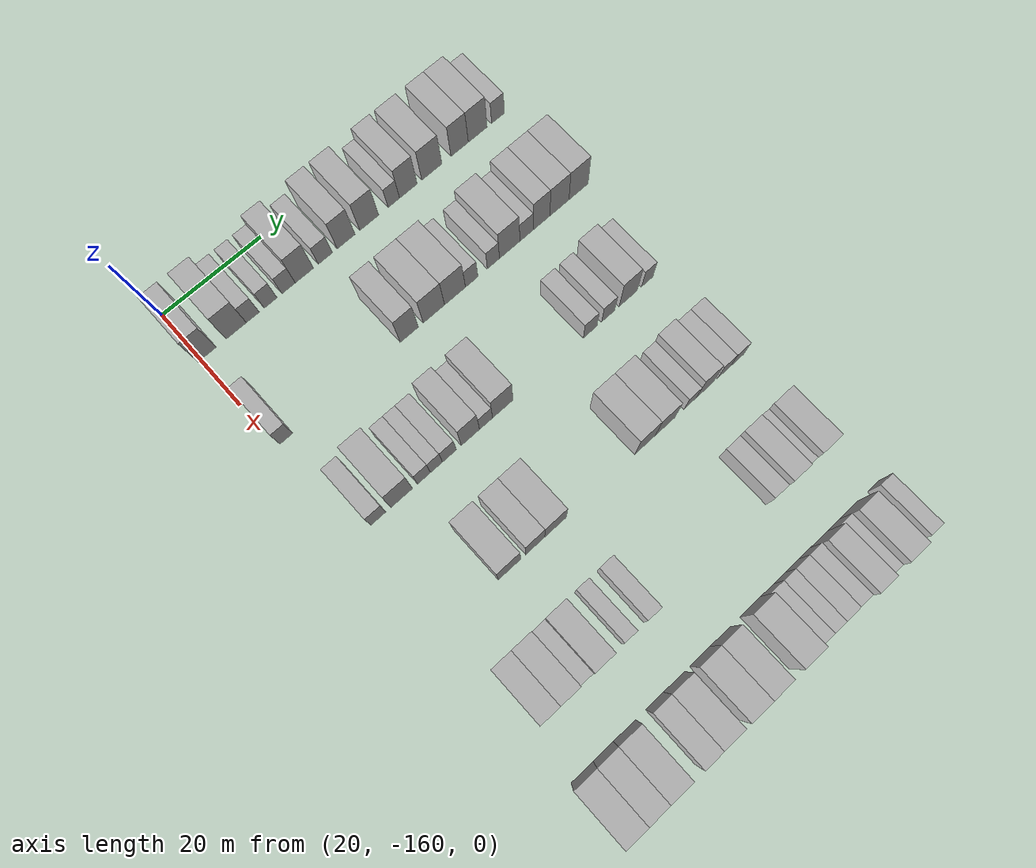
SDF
<sdf version="1.6">
 <world name="default">
  <model name="building_47">
   <static>1</static>
   <pose>25.0000 -158.7105 0 0.000000 0.000000 0.000000</pose>
   <link name="link">
    <pose>0 0 4.50 0 0 0</pose>
    <collision name="collision"><geometry><box><size>10.0000 3.6014 9.0000</size></box></geometry></collision>
    <visual name="visual">
     <cast_shadows>0</cast_shadows>
     <geometry><box><size>10.0000 3.6014 9.0000</size></box></geometry>
     <material>
      <script>
       <uri>model://HANNAS_wall/materials/scripts</uri>
       <uri>model://HANNAS_wall/materials/textures</uri>
       <name>vrc/HANNAS_wall</name>
      </script>
     </material>
    </visual>
   </link>
  </model>
  <model name="building_48">
   <static>1</static>
   <pose>25.0000 -152.8918 0 0.000000 0.000000 0.000000</pose>
   <link name="link">
    <pose>0 0 4.50 0 0 0</pose>
    <collision name="collision"><geometry><box><size>10.0000 4.0360 9.0000</size></box></geometry></collision>
    <visual name="visual">
     <cast_shadows>0</cast_shadows>
     <geometry><box><size>10.0000 4.0360 9.0000</size></box></geometry>
     <material>
      <script>
       <uri>model://HANNAS_wall/materials/scripts</uri>
       <uri>model://HANNAS_wall/materials/textures</uri>
       <name>vrc/HANNAS_wall</name>
      </script>
     </material>
    </visual>
   </link>
  </model>
  <model name="building_49">
   <static>1</static>
   <pose>25.0000 -149.5573 0 0.000000 0.000000 0.000000</pose>
   <link name="link">
    <pose>0 0 3.00 0 0 0</pose>
    <collision name="collision"><geometry><box><size>10.0000 2.6331 6.0000</size></box></geometry></collision>
    <visual name="visual">
     <cast_shadows>0</cast_shadows>
     <geometry><box><size>10.0000 2.6331 6.0000</size></box></geometry>
     <material>
      <script>
       <uri>model://HANNAS_wall/materials/scripts</uri>
       <uri>model://HANNAS_wall/materials/textures</uri>
       <name>vrc/HANNAS_wall</name>
      </script>
     </material>
    </visual>
   </link>
  </model>
  <model name="building_50">
   <static>1</static>
   <pose>25.0000 -145.9354 0 0.000000 0.000000 0.000000</pose>
   <link name="link">
    <pose>0 0 3.00 0 0 0</pose>
    <collision name="collision"><geometry><box><size>10.0000 2.6107 6.0000</size></box></geometry></collision>
    <visual name="visual">
     <cast_shadows>0</cast_shadows>
     <geometry><box><size>10.0000 2.6107 6.0000</size></box></geometry>
     <material>
      <script>
       <uri>model://HANNAS_wall/materials/scripts</uri>
       <uri>model://HANNAS_wall/materials/textures</uri>
       <name>vrc/HANNAS_wall</name>
      </script>
     </material>
    </visual>
   </link>
  </model>
  <model name="building_51">
   <static>1</static>
   <pose>25.0000 -142.2636 0 0.000000 0.000000 0.000000</pose>
   <link name="link">
    <pose>0 0 3.00 0 0 0</pose>
    <collision name="collision"><geometry><box><size>10.0000 2.7328 6.0000</size></box></geometry></collision>
    <visual name="visual">
     <cast_shadows>0</cast_shadows>
     <geometry><box><size>10.0000 2.7328 6.0000</size></box></geometry>
     <material>
      <script>
       <uri>model://HANNAS_wall/materials/scripts</uri>
       <uri>model://HANNAS_wall/materials/textures</uri>
       <name>vrc/HANNAS_wall</name>
      </script>
     </material>
    </visual>
   </link>
  </model>
  <model name="building_52">
   <static>1</static>
   <pose>25.0000 -139.0111 0 0.000000 0.000000 0.000000</pose>
   <link name="link">
    <pose>0 0 4.50 0 0 0</pose>
    <collision name="collision"><geometry><box><size>10.0000 3.7722 9.0000</size></box></geometry></collision>
    <visual name="visual">
     <cast_shadows>0</cast_shadows>
     <geometry><box><size>10.0000 3.7722 9.0000</size></box></geometry>
     <material>
      <script>
       <uri>model://HANNAS_wall/materials/scripts</uri>
       <uri>model://HANNAS_wall/materials/textures</uri>
       <name>vrc/HANNAS_wall</name>
      </script>
     </material>
    </visual>
   </link>
  </model>
  <model name="building_53">
   <static>1</static>
   <pose>25.0000 -134.6420 0 0.000000 0.000000 0.000000</pose>
   <link name="link">
    <pose>0 0 3.00 0 0 0</pose>
    <collision name="collision"><geometry><box><size>10.0000 2.9661 6.0000</size></box></geometry></collision>
    <visual name="visual">
     <cast_shadows>0</cast_shadows>
     <geometry><box><size>10.0000 2.9661 6.0000</size></box></geometry>
     <material>
      <script>
       <uri>model://HANNAS_wall/materials/scripts</uri>
       <uri>model://HANNAS_wall/materials/textures</uri>
       <name>vrc/HANNAS_wall</name>
      </script>
     </material>
    </visual>
   </link>
  </model>
  <model name="building_54">
   <static>1</static>
   <pose>25.0000 -130.2892 0 0.000000 0.000000 0.000000</pose>
   <link name="link">
    <pose>0 0 4.50 0 0 0</pose>
    <collision name="collision"><geometry><box><size>10.0000 3.7396 9.0000</size></box></geometry></collision>
    <visual name="visual">
     <cast_shadows>0</cast_shadows>
     <geometry><box><size>10.0000 3.7396 9.0000</size></box></geometry>
     <material>
      <script>
       <uri>model://HANNAS_wall/materials/scripts</uri>
       <uri>model://HANNAS_wall/materials/textures</uri>
       <name>vrc/HANNAS_wall</name>
      </script>
     </material>
    </visual>
   </link>
  </model>
  <model name="building_55">
   <static>1</static>
   <pose>25.0000 -125.3998 0 0.000000 0.000000 0.000000</pose>
   <link name="link">
    <pose>0 0 4.50 0 0 0</pose>
    <collision name="collision"><geometry><box><size>10.0000 4.0391 9.0000</size></box></geometry></collision>
    <visual name="visual">
     <cast_shadows>0</cast_shadows>
     <geometry><box><size>10.0000 4.0391 9.0000</size></box></geometry>
     <material>
      <script>
       <uri>model://HANNAS_wall/materials/scripts</uri>
       <uri>model://HANNAS_wall/materials/textures</uri>
       <name>vrc/HANNAS_wall</name>
      </script>
     </material>
    </visual>
   </link>
  </model>
  <model name="building_56">
   <static>1</static>
   <pose>25.0000 -120.1382 0 0.000000 0.000000 0.000000</pose>
   <link name="link">
    <pose>0 0 3.00 0 0 0</pose>
    <collision name="collision"><geometry><box><size>10.0000 2.4840 6.0000</size></box></geometry></collision>
    <visual name="visual">
     <cast_shadows>0</cast_shadows>
     <geometry><box><size>10.0000 2.4840 6.0000</size></box></geometry>
     <material>
      <script>
       <uri>model://HANNAS_wall/materials/scripts</uri>
       <uri>model://HANNAS_wall/materials/textures</uri>
       <name>vrc/HANNAS_wall</name>
      </script>
     </material>
    </visual>
   </link>
  </model>
  <model name="building_57">
   <static>1</static>
   <pose>25.0000 -116.9974 0 0.000000 0.000000 0.000000</pose>
   <link name="link">
    <pose>0 0 4.50 0 0 0</pose>
    <collision name="collision"><geometry><box><size>10.0000 3.7977 9.0000</size></box></geometry></collision>
    <visual name="visual">
     <cast_shadows>0</cast_shadows>
     <geometry><box><size>10.0000 3.7977 9.0000</size></box></geometry>
     <material>
      <script>
       <uri>model://HANNAS_wall/materials/scripts</uri>
       <uri>model://HANNAS_wall/materials/textures</uri>
       <name>vrc/HANNAS_wall</name>
      </script>
     </material>
    </visual>
   </link>
  </model>
  <model name="building_58">
   <static>1</static>
   <pose>25.0000 -111.8915 0 0.000000 0.000000 0.000000</pose>
   <link name="link">
    <pose>0 0 4.50 0 0 0</pose>
    <collision name="collision"><geometry><box><size>10.0000 4.4141 9.0000</size></box></geometry></collision>
    <visual name="visual">
     <cast_shadows>0</cast_shadows>
     <geometry><box><size>10.0000 4.4141 9.0000</size></box></geometry>
     <material>
      <script>
       <uri>model://HANNAS_wall/materials/scripts</uri>
       <uri>model://HANNAS_wall/materials/textures</uri>
       <name>vrc/HANNAS_wall</name>
      </script>
     </material>
    </visual>
   </link>
  </model>
  <model name="building_59">
   <static>1</static>
   <pose>25.0000 -105.7636 0 0.000000 0.000000 0.000000</pose>
   <link name="link">
    <pose>0 0 4.50 0 0 0</pose>
    <collision name="collision"><geometry><box><size>10.0000 3.8415 9.0000</size></box></geometry></collision>
    <visual name="visual">
     <cast_shadows>0</cast_shadows>
     <geometry><box><size>10.0000 3.8415 9.0000</size></box></geometry>
     <material>
      <script>
       <uri>model://HANNAS_wall/materials/scripts</uri>
       <uri>model://HANNAS_wall/materials/textures</uri>
       <name>vrc/HANNAS_wall</name>
      </script>
     </material>
    </visual>
   </link>
  </model>
  <model name="building_60">
   <static>1</static>
   <pose>25.0000 -101.7436 0 0.000000 0.000000 0.000000</pose>
   <link name="link">
    <pose>0 0 4.50 0 0 0</pose>
    <collision name="collision"><geometry><box><size>10.0000 4.1987 9.0000</size></box></geometry></collision>
    <visual name="visual">
     <cast_shadows>0</cast_shadows>
     <geometry><box><size>10.0000 4.1987 9.0000</size></box></geometry>
     <material>
      <script>
       <uri>model://HANNAS_wall/materials/scripts</uri>
       <uri>model://HANNAS_wall/materials/textures</uri>
       <name>vrc/HANNAS_wall</name>
      </script>
     </material>
    </visual>
   </link>
  </model>
  <model name="building_61">
   <static>1</static>
   <pose>25.0000 -97.2001 0 0.000000 0.000000 0.000000</pose>
   <link name="link">
    <pose>0 0 3.00 0 0 0</pose>
    <collision name="collision"><geometry><box><size>10.0000 2.8882 6.0000</size></box></geometry></collision>
    <visual name="visual">
     <cast_shadows>0</cast_shadows>
     <geometry><box><size>10.0000 2.8882 6.0000</size></box></geometry>
     <material>
      <script>
       <uri>model://HANNAS_wall/materials/scripts</uri>
       <uri>model://HANNAS_wall/materials/textures</uri>
       <name>vrc/HANNAS_wall</name>
      </script>
     </material>
    </visual>
   </link>
  </model>
  <model name="building_219">
   <static>1</static>
   <pose>44.0000 -158.0676 0 0.000000 0.000000 0.000000</pose>
   <link name="link">
    <pose>0 0 3.00 0 0 0</pose>
    <collision name="collision"><geometry><box><size>10.0000 2.5374 6.0000</size></box></geometry></collision>
    <visual name="visual">
     <cast_shadows>0</cast_shadows>
     <geometry><box><size>10.0000 2.5374 6.0000</size></box></geometry>
     <material>
      <script>
       <uri>model://HANNAS_wall/materials/scripts</uri>
       <uri>model://HANNAS_wall/materials/textures</uri>
       <name>vrc/HANNAS_wall</name>
      </script>
     </material>
    </visual>
   </link>
  </model>
  <model name="building_220">
   <static>1</static>
   <pose>44.0000 -133.1350 0 0.000000 0.000000 0.000000</pose>
   <link name="link">
    <pose>0 0 4.50 0 0 0</pose>
    <collision name="collision"><geometry><box><size>10.0000 3.7759 9.0000</size></box></geometry></collision>
    <visual name="visual">
     <cast_shadows>0</cast_shadows>
     <geometry><box><size>10.0000 3.7759 9.0000</size></box></geometry>
     <material>
      <script>
       <uri>model://HANNAS_wall/materials/scripts</uri>
       <uri>model://HANNAS_wall/materials/textures</uri>
       <name>vrc/HANNAS_wall</name>
      </script>
     </material>
    </visual>
   </link>
  </model>
  <model name="building_221">
   <static>1</static>
   <pose>44.0000 -127.9988 0 0.000000 0.000000 0.000000</pose>
   <link name="link">
    <pose>0 0 4.50 0 0 0</pose>
    <collision name="collision"><geometry><box><size>10.0000 4.4965 9.0000</size></box></geometry></collision>
    <visual name="visual">
     <cast_shadows>0</cast_shadows>
     <geometry><box><size>10.0000 4.4965 9.0000</size></box></geometry>
     <material>
      <script>
       <uri>model://HANNAS_wall/materials/scripts</uri>
       <uri>model://HANNAS_wall/materials/textures</uri>
       <name>vrc/HANNAS_wall</name>
      </script>
     </material>
    </visual>
   </link>
  </model>
  <model name="building_222">
   <static>1</static>
   <pose>44.0000 -123.5186 0 0.000000 0.000000 0.000000</pose>
   <link name="link">
    <pose>0 0 4.50 0 0 0</pose>
    <collision name="collision"><geometry><box><size>10.0000 4.4639 9.0000</size></box></geometry></collision>
    <visual name="visual">
     <cast_shadows>0</cast_shadows>
     <geometry><box><size>10.0000 4.4639 9.0000</size></box></geometry>
     <material>
      <script>
       <uri>model://HANNAS_wall/materials/scripts</uri>
       <uri>model://HANNAS_wall/materials/textures</uri>
       <name>vrc/HANNAS_wall</name>
      </script>
     </material>
    </visual>
   </link>
  </model>
  <model name="building_223">
   <static>1</static>
   <pose>44.0000 -119.9459 0 0.000000 0.000000 0.000000</pose>
   <link name="link">
    <pose>0 0 3.00 0 0 0</pose>
    <collision name="collision"><geometry><box><size>10.0000 2.6814 6.0000</size></box></geometry></collision>
    <visual name="visual">
     <cast_shadows>0</cast_shadows>
     <geometry><box><size>10.0000 2.6814 6.0000</size></box></geometry>
     <material>
      <script>
       <uri>model://HANNAS_wall/materials/scripts</uri>
       <uri>model://HANNAS_wall/materials/textures</uri>
       <name>vrc/HANNAS_wall</name>
      </script>
     </material>
    </visual>
   </link>
  </model>
  <model name="building_224">
   <static>1</static>
   <pose>44.0000 -115.2876 0 0.000000 0.000000 0.000000</pose>
   <link name="link">
    <pose>0 0 3.00 0 0 0</pose>
    <collision name="collision"><geometry><box><size>10.0000 2.6351 6.0000</size></box></geometry></collision>
    <visual name="visual">
     <cast_shadows>0</cast_shadows>
     <geometry><box><size>10.0000 2.6351 6.0000</size></box></geometry>
     <material>
      <script>
       <uri>model://HANNAS_wall/materials/scripts</uri>
       <uri>model://HANNAS_wall/materials/textures</uri>
       <name>vrc/HANNAS_wall</name>
      </script>
     </material>
    </visual>
   </link>
  </model>
  <model name="building_225">
   <static>1</static>
   <pose>44.0000 -111.7507 0 0.000000 0.000000 0.000000</pose>
   <link name="link">
    <pose>0 0 4.50 0 0 0</pose>
    <collision name="collision"><geometry><box><size>10.0000 4.4386 9.0000</size></box></geometry></collision>
    <visual name="visual">
     <cast_shadows>0</cast_shadows>
     <geometry><box><size>10.0000 4.4386 9.0000</size></box></geometry>
     <material>
      <script>
       <uri>model://HANNAS_wall/materials/scripts</uri>
       <uri>model://HANNAS_wall/materials/textures</uri>
       <name>vrc/HANNAS_wall</name>
      </script>
     </material>
    </visual>
   </link>
  </model>
  <model name="building_226">
   <static>1</static>
   <pose>44.0000 -108.0406 0 0.000000 0.000000 0.000000</pose>
   <link name="link">
    <pose>0 0 3.00 0 0 0</pose>
    <collision name="collision"><geometry><box><size>10.0000 2.9817 6.0000</size></box></geometry></collision>
    <visual name="visual">
     <cast_shadows>0</cast_shadows>
     <geometry><box><size>10.0000 2.9817 6.0000</size></box></geometry>
     <material>
      <script>
       <uri>model://HANNAS_wall/materials/scripts</uri>
       <uri>model://HANNAS_wall/materials/textures</uri>
       <name>vrc/HANNAS_wall</name>
      </script>
     </material>
    </visual>
   </link>
  </model>
  <model name="building_227">
   <static>1</static>
   <pose>44.0000 -104.7275 0 0.000000 0.000000 0.000000</pose>
   <link name="link">
    <pose>0 0 4.50 0 0 0</pose>
    <collision name="collision"><geometry><box><size>10.0000 3.6444 9.0000</size></box></geometry></collision>
    <visual name="visual">
     <cast_shadows>0</cast_shadows>
     <geometry><box><size>10.0000 3.6444 9.0000</size></box></geometry>
     <material>
      <script>
       <uri>model://HANNAS_wall/materials/scripts</uri>
       <uri>model://HANNAS_wall/materials/textures</uri>
       <name>vrc/HANNAS_wall</name>
      </script>
     </material>
    </visual>
   </link>
  </model>
  <model name="building_228">
   <static>1</static>
   <pose>44.0000 -100.7807 0 0.000000 0.000000 0.000000</pose>
   <link name="link">
    <pose>0 0 4.50 0 0 0</pose>
    <collision name="collision"><geometry><box><size>10.0000 4.2492 9.0000</size></box></geometry></collision>
    <visual name="visual">
     <cast_shadows>0</cast_shadows>
     <geometry><box><size>10.0000 4.2492 9.0000</size></box></geometry>
     <material>
      <script>
       <uri>model://HANNAS_wall/materials/scripts</uri>
       <uri>model://HANNAS_wall/materials/textures</uri>
       <name>vrc/HANNAS_wall</name>
      </script>
     </material>
    </visual>
   </link>
  </model>
  <model name="building_229">
   <static>1</static>
   <pose>44.0000 -96.5054 0 0.000000 0.000000 0.000000</pose>
   <link name="link">
    <pose>0 0 4.50 0 0 0</pose>
    <collision name="collision"><geometry><box><size>10.0000 4.3014 9.0000</size></box></geometry></collision>
    <visual name="visual">
     <cast_shadows>0</cast_shadows>
     <geometry><box><size>10.0000 4.3014 9.0000</size></box></geometry>
     <material>
      <script>
       <uri>model://HANNAS_wall/materials/scripts</uri>
       <uri>model://HANNAS_wall/materials/textures</uri>
       <name>vrc/HANNAS_wall</name>
      </script>
     </material>
    </visual>
   </link>
  </model>
  <model name="building_395">
   <static>1</static>
   <pose>63.0000 -155.6162 0 0.000000 0.000000 0.000000</pose>
   <link name="link">
    <pose>0 0 3.00 0 0 0</pose>
    <collision name="collision"><geometry><box><size>10.0000 2.9532 6.0000</size></box></geometry></collision>
    <visual name="visual">
     <cast_shadows>0</cast_shadows>
     <geometry><box><size>10.0000 2.9532 6.0000</size></box></geometry>
     <material>
      <script>
       <uri>model://HANNAS_wall/materials/scripts</uri>
       <uri>model://HANNAS_wall/materials/textures</uri>
       <name>vrc/HANNAS_wall</name>
      </script>
     </material>
    </visual>
   </link>
  </model>
  <model name="building_396">
   <static>1</static>
   <pose>63.0000 -150.9834 0 0.000000 0.000000 0.000000</pose>
   <link name="link">
    <pose>0 0 4.50 0 0 0</pose>
    <collision name="collision"><geometry><box><size>10.0000 4.3124 9.0000</size></box></geometry></collision>
    <visual name="visual">
     <cast_shadows>0</cast_shadows>
     <geometry><box><size>10.0000 4.3124 9.0000</size></box></geometry>
     <material>
      <script>
       <uri>model://HANNAS_wall/materials/scripts</uri>
       <uri>model://HANNAS_wall/materials/textures</uri>
       <name>vrc/HANNAS_wall</name>
      </script>
     </material>
    </visual>
   </link>
  </model>
  <model name="building_397">
   <static>1</static>
   <pose>63.0000 -146.5217 0 0.000000 0.000000 0.000000</pose>
   <link name="link">
    <pose>0 0 3.00 0 0 0</pose>
    <collision name="collision"><geometry><box><size>10.0000 2.6111 6.0000</size></box></geometry></collision>
    <visual name="visual">
     <cast_shadows>0</cast_shadows>
     <geometry><box><size>10.0000 2.6111 6.0000</size></box></geometry>
     <material>
      <script>
       <uri>model://HANNAS_wall/materials/scripts</uri>
       <uri>model://HANNAS_wall/materials/textures</uri>
       <name>vrc/HANNAS_wall</name>
      </script>
     </material>
    </visual>
   </link>
  </model>
  <model name="building_398">
   <static>1</static>
   <pose>63.0000 -144.0055 0 0.000000 0.000000 0.000000</pose>
   <link name="link">
    <pose>0 0 3.00 0 0 0</pose>
    <collision name="collision"><geometry><box><size>10.0000 2.4214 6.0000</size></box></geometry></collision>
    <visual name="visual">
     <cast_shadows>0</cast_shadows>
     <geometry><box><size>10.0000 2.4214 6.0000</size></box></geometry>
     <material>
      <script>
       <uri>model://HANNAS_wall/materials/scripts</uri>
       <uri>model://HANNAS_wall/materials/textures</uri>
       <name>vrc/HANNAS_wall</name>
      </script>
     </material>
    </visual>
   </link>
  </model>
  <model name="building_399">
   <static>1</static>
   <pose>63.0000 -141.3772 0 0.000000 0.000000 0.000000</pose>
   <link name="link">
    <pose>0 0 3.00 0 0 0</pose>
    <collision name="collision"><geometry><box><size>10.0000 2.8353 6.0000</size></box></geometry></collision>
    <visual name="visual">
     <cast_shadows>0</cast_shadows>
     <geometry><box><size>10.0000 2.8353 6.0000</size></box></geometry>
     <material>
      <script>
       <uri>model://HANNAS_wall/materials/scripts</uri>
       <uri>model://HANNAS_wall/materials/textures</uri>
       <name>vrc/HANNAS_wall</name>
      </script>
     </material>
    </visual>
   </link>
  </model>
  <model name="building_400">
   <static>1</static>
   <pose>63.0000 -137.0867 0 0.000000 0.000000 0.000000</pose>
   <link name="link">
    <pose>0 0 4.50 0 0 0</pose>
    <collision name="collision"><geometry><box><size>10.0000 3.7456 9.0000</size></box></geometry></collision>
    <visual name="visual">
     <cast_shadows>0</cast_shadows>
     <geometry><box><size>10.0000 3.7456 9.0000</size></box></geometry>
     <material>
      <script>
       <uri>model://HANNAS_wall/materials/scripts</uri>
       <uri>model://HANNAS_wall/materials/textures</uri>
       <name>vrc/HANNAS_wall</name>
      </script>
     </material>
    </visual>
   </link>
  </model>
  <model name="building_401">
   <static>1</static>
   <pose>63.0000 -133.8609 0 0.000000 0.000000 0.000000</pose>
   <link name="link">
    <pose>0 0 3.00 0 0 0</pose>
    <collision name="collision"><geometry><box><size>10.0000 2.7061 6.0000</size></box></geometry></collision>
    <visual name="visual">
     <cast_shadows>0</cast_shadows>
     <geometry><box><size>10.0000 2.7061 6.0000</size></box></geometry>
     <material>
      <script>
       <uri>model://HANNAS_wall/materials/scripts</uri>
       <uri>model://HANNAS_wall/materials/textures</uri>
       <name>vrc/HANNAS_wall</name>
      </script>
     </material>
    </visual>
   </link>
  </model>
  <model name="building_402">
   <static>1</static>
   <pose>63.0000 -130.3939 0 0.000000 0.000000 0.000000</pose>
   <link name="link">
    <pose>0 0 4.50 0 0 0</pose>
    <collision name="collision"><geometry><box><size>10.0000 4.2279 9.0000</size></box></geometry></collision>
    <visual name="visual">
     <cast_shadows>0</cast_shadows>
     <geometry><box><size>10.0000 4.2279 9.0000</size></box></geometry>
     <material>
      <script>
       <uri>model://HANNAS_wall/materials/scripts</uri>
       <uri>model://HANNAS_wall/materials/textures</uri>
       <name>vrc/HANNAS_wall</name>
      </script>
     </material>
    </visual>
   </link>
  </model>
  <model name="building_403">
   <static>1</static>
   <pose>63.0000 -111.8093 0 0.000000 0.000000 0.000000</pose>
   <link name="link">
    <pose>0 0 3.00 0 0 0</pose>
    <collision name="collision"><geometry><box><size>10.0000 2.9805 6.0000</size></box></geometry></collision>
    <visual name="visual">
     <cast_shadows>0</cast_shadows>
     <geometry><box><size>10.0000 2.9805 6.0000</size></box></geometry>
     <material>
      <script>
       <uri>model://HANNAS_wall/materials/scripts</uri>
       <uri>model://HANNAS_wall/materials/textures</uri>
       <name>vrc/HANNAS_wall</name>
      </script>
     </material>
    </visual>
   </link>
  </model>
  <model name="building_404">
   <static>1</static>
   <pose>63.0000 -107.8814 0 0.000000 0.000000 0.000000</pose>
   <link name="link">
    <pose>0 0 3.00 0 0 0</pose>
    <collision name="collision"><geometry><box><size>10.0000 2.8753 6.0000</size></box></geometry></collision>
    <visual name="visual">
     <cast_shadows>0</cast_shadows>
     <geometry><box><size>10.0000 2.8753 6.0000</size></box></geometry>
     <material>
      <script>
       <uri>model://HANNAS_wall/materials/scripts</uri>
       <uri>model://HANNAS_wall/materials/textures</uri>
       <name>vrc/HANNAS_wall</name>
      </script>
     </material>
    </visual>
   </link>
  </model>
  <model name="building_405">
   <static>1</static>
   <pose>63.0000 -103.4591 0 0.000000 0.000000 0.000000</pose>
   <link name="link">
    <pose>0 0 4.50 0 0 0</pose>
    <collision name="collision"><geometry><box><size>10.0000 3.9693 9.0000</size></box></geometry></collision>
    <visual name="visual">
     <cast_shadows>0</cast_shadows>
     <geometry><box><size>10.0000 3.9693 9.0000</size></box></geometry>
     <material>
      <script>
       <uri>model://HANNAS_wall/materials/scripts</uri>
       <uri>model://HANNAS_wall/materials/textures</uri>
       <name>vrc/HANNAS_wall</name>
      </script>
     </material>
    </visual>
   </link>
  </model>
  <model name="building_406">
   <static>1</static>
   <pose>63.0000 -99.2204 0 0.000000 0.000000 0.000000</pose>
   <link name="link">
    <pose>0 0 3.00 0 0 0</pose>
    <collision name="collision"><geometry><box><size>10.0000 2.5082 6.0000</size></box></geometry></collision>
    <visual name="visual">
     <cast_shadows>0</cast_shadows>
     <geometry><box><size>10.0000 2.5082 6.0000</size></box></geometry>
     <material>
      <script>
       <uri>model://HANNAS_wall/materials/scripts</uri>
       <uri>model://HANNAS_wall/materials/textures</uri>
       <name>vrc/HANNAS_wall</name>
      </script>
     </material>
    </visual>
   </link>
  </model>
  <model name="building_568">
   <static>1</static>
   <pose>82.0000 -146.1748 0 0.000000 0.000000 0.000000</pose>
   <link name="link">
    <pose>0 0 4.50 0 0 0</pose>
    <collision name="collision"><geometry><box><size>10.0000 4.4943 9.0000</size></box></geometry></collision>
    <visual name="visual">
     <cast_shadows>0</cast_shadows>
     <geometry><box><size>10.0000 4.4943 9.0000</size></box></geometry>
     <material>
      <script>
       <uri>model://HANNAS_wall/materials/scripts</uri>
       <uri>model://HANNAS_wall/materials/textures</uri>
       <name>vrc/HANNAS_wall</name>
      </script>
     </material>
    </visual>
   </link>
  </model>
  <model name="building_569">
   <static>1</static>
   <pose>82.0000 -141.0214 0 0.000000 0.000000 0.000000</pose>
   <link name="link">
    <pose>0 0 4.50 0 0 0</pose>
    <collision name="collision"><geometry><box><size>10.0000 3.8125 9.0000</size></box></geometry></collision>
    <visual name="visual">
     <cast_shadows>0</cast_shadows>
     <geometry><box><size>10.0000 3.8125 9.0000</size></box></geometry>
     <material>
      <script>
       <uri>model://HANNAS_wall/materials/scripts</uri>
       <uri>model://HANNAS_wall/materials/textures</uri>
       <name>vrc/HANNAS_wall</name>
      </script>
     </material>
    </visual>
   </link>
  </model>
  <model name="building_570">
   <static>1</static>
   <pose>82.0000 -136.9185 0 0.000000 0.000000 0.000000</pose>
   <link name="link">
    <pose>0 0 4.50 0 0 0</pose>
    <collision name="collision"><geometry><box><size>10.0000 4.3932 9.0000</size></box></geometry></collision>
    <visual name="visual">
     <cast_shadows>0</cast_shadows>
     <geometry><box><size>10.0000 4.3932 9.0000</size></box></geometry>
     <material>
      <script>
       <uri>model://HANNAS_wall/materials/scripts</uri>
       <uri>model://HANNAS_wall/materials/textures</uri>
       <name>vrc/HANNAS_wall</name>
      </script>
     </material>
    </visual>
   </link>
  </model>
  <model name="building_571">
   <static>1</static>
   <pose>82.0000 -118.1561 0 0.000000 0.000000 0.000000</pose>
   <link name="link">
    <pose>0 0 4.50 0 0 0</pose>
    <collision name="collision"><geometry><box><size>10.0000 4.3772 9.0000</size></box></geometry></collision>
    <visual name="visual">
     <cast_shadows>0</cast_shadows>
     <geometry><box><size>10.0000 4.3772 9.0000</size></box></geometry>
     <material>
      <script>
       <uri>model://HANNAS_wall/materials/scripts</uri>
       <uri>model://HANNAS_wall/materials/textures</uri>
       <name>vrc/HANNAS_wall</name>
      </script>
     </material>
    </visual>
   </link>
  </model>
  <model name="building_572">
   <static>1</static>
   <pose>82.0000 -113.8756 0 0.000000 0.000000 0.000000</pose>
   <link name="link">
    <pose>0 0 4.50 0 0 0</pose>
    <collision name="collision"><geometry><box><size>10.0000 4.1838 9.0000</size></box></geometry></collision>
    <visual name="visual">
     <cast_shadows>0</cast_shadows>
     <geometry><box><size>10.0000 4.1838 9.0000</size></box></geometry>
     <material>
      <script>
       <uri>model://HANNAS_wall/materials/scripts</uri>
       <uri>model://HANNAS_wall/materials/textures</uri>
       <name>vrc/HANNAS_wall</name>
      </script>
     </material>
    </visual>
   </link>
  </model>
  <model name="building_573">
   <static>1</static>
   <pose>82.0000 -108.4284 0 0.000000 0.000000 0.000000</pose>
   <link name="link">
    <pose>0 0 3.00 0 0 0</pose>
    <collision name="collision"><geometry><box><size>10.0000 2.7107 6.0000</size></box></geometry></collision>
    <visual name="visual">
     <cast_shadows>0</cast_shadows>
     <geometry><box><size>10.0000 2.7107 6.0000</size></box></geometry>
     <material>
      <script>
       <uri>model://HANNAS_wall/materials/scripts</uri>
       <uri>model://HANNAS_wall/materials/textures</uri>
       <name>vrc/HANNAS_wall</name>
      </script>
     </material>
    </visual>
   </link>
  </model>
  <model name="building_574">
   <static>1</static>
   <pose>82.0000 -105.2366 0 0.000000 0.000000 0.000000</pose>
   <link name="link">
    <pose>0 0 4.50 0 0 0</pose>
    <collision name="collision"><geometry><box><size>10.0000 3.6728 9.0000</size></box></geometry></collision>
    <visual name="visual">
     <cast_shadows>0</cast_shadows>
     <geometry><box><size>10.0000 3.6728 9.0000</size></box></geometry>
     <material>
      <script>
       <uri>model://HANNAS_wall/materials/scripts</uri>
       <uri>model://HANNAS_wall/materials/textures</uri>
       <name>vrc/HANNAS_wall</name>
      </script>
     </material>
    </visual>
   </link>
  </model>
  <model name="building_575">
   <static>1</static>
   <pose>82.0000 -100.9690 0 0.000000 0.000000 0.000000</pose>
   <link name="link">
    <pose>0 0 3.00 0 0 0</pose>
    <collision name="collision"><geometry><box><size>10.0000 2.8623 6.0000</size></box></geometry></collision>
    <visual name="visual">
     <cast_shadows>0</cast_shadows>
     <geometry><box><size>10.0000 2.8623 6.0000</size></box></geometry>
     <material>
      <script>
       <uri>model://HANNAS_wall/materials/scripts</uri>
       <uri>model://HANNAS_wall/materials/textures</uri>
       <name>vrc/HANNAS_wall</name>
      </script>
     </material>
    </visual>
   </link>
  </model>
  <model name="building_576">
   <static>1</static>
   <pose>82.0000 -98.0628 0 0.000000 0.000000 0.000000</pose>
   <link name="link">
    <pose>0 0 3.00 0 0 0</pose>
    <collision name="collision"><geometry><box><size>10.0000 2.9502 6.0000</size></box></geometry></collision>
    <visual name="visual">
     <cast_shadows>0</cast_shadows>
     <geometry><box><size>10.0000 2.9502 6.0000</size></box></geometry>
     <material>
      <script>
       <uri>model://HANNAS_wall/materials/scripts</uri>
       <uri>model://HANNAS_wall/materials/textures</uri>
       <name>vrc/HANNAS_wall</name>
      </script>
     </material>
    </visual>
   </link>
  </model>
  <model name="building_723">
   <static>1</static>
   <pose>101.0000 -155.6596 0 0.000000 0.000000 0.000000</pose>
   <link name="link">
    <pose>0 0 4.50 0 0 0</pose>
    <collision name="collision"><geometry><box><size>10.0000 3.7851 9.0000</size></box></geometry></collision>
    <visual name="visual">
     <cast_shadows>0</cast_shadows>
     <geometry><box><size>10.0000 3.7851 9.0000</size></box></geometry>
     <material>
      <script>
       <uri>model://HANNAS_wall/materials/scripts</uri>
       <uri>model://HANNAS_wall/materials/textures</uri>
       <name>vrc/HANNAS_wall</name>
      </script>
     </material>
    </visual>
   </link>
  </model>
  <model name="building_724">
   <static>1</static>
   <pose>101.0000 -151.8506 0 0.000000 0.000000 0.000000</pose>
   <link name="link">
    <pose>0 0 4.50 0 0 0</pose>
    <collision name="collision"><geometry><box><size>10.0000 3.8329 9.0000</size></box></geometry></collision>
    <visual name="visual">
     <cast_shadows>0</cast_shadows>
     <geometry><box><size>10.0000 3.8329 9.0000</size></box></geometry>
     <material>
      <script>
       <uri>model://HANNAS_wall/materials/scripts</uri>
       <uri>model://HANNAS_wall/materials/textures</uri>
       <name>vrc/HANNAS_wall</name>
      </script>
     </material>
    </visual>
   </link>
  </model>
  <model name="building_725">
   <static>1</static>
   <pose>101.0000 -148.6574 0 0.000000 0.000000 0.000000</pose>
   <link name="link">
    <pose>0 0 3.00 0 0 0</pose>
    <collision name="collision"><geometry><box><size>10.0000 2.5536 6.0000</size></box></geometry></collision>
    <visual name="visual">
     <cast_shadows>0</cast_shadows>
     <geometry><box><size>10.0000 2.5536 6.0000</size></box></geometry>
     <material>
      <script>
       <uri>model://HANNAS_wall/materials/scripts</uri>
       <uri>model://HANNAS_wall/materials/textures</uri>
       <name>vrc/HANNAS_wall</name>
      </script>
     </material>
    </visual>
   </link>
  </model>
  <model name="building_726">
   <static>1</static>
   <pose>101.0000 -145.3738 0 0.000000 0.000000 0.000000</pose>
   <link name="link">
    <pose>0 0 4.50 0 0 0</pose>
    <collision name="collision"><geometry><box><size>10.0000 4.0135 9.0000</size></box></geometry></collision>
    <visual name="visual">
     <cast_shadows>0</cast_shadows>
     <geometry><box><size>10.0000 4.0135 9.0000</size></box></geometry>
     <material>
      <script>
       <uri>model://HANNAS_wall/materials/scripts</uri>
       <uri>model://HANNAS_wall/materials/textures</uri>
       <name>vrc/HANNAS_wall</name>
      </script>
     </material>
    </visual>
   </link>
  </model>
  <model name="building_727">
   <static>1</static>
   <pose>101.0000 -140.0995 0 0.000000 0.000000 0.000000</pose>
   <link name="link">
    <pose>0 0 3.00 0 0 0</pose>
    <collision name="collision"><geometry><box><size>10.0000 2.5351 6.0000</size></box></geometry></collision>
    <visual name="visual">
     <cast_shadows>0</cast_shadows>
     <geometry><box><size>10.0000 2.5351 6.0000</size></box></geometry>
     <material>
      <script>
       <uri>model://HANNAS_wall/materials/scripts</uri>
       <uri>model://HANNAS_wall/materials/textures</uri>
       <name>vrc/HANNAS_wall</name>
      </script>
     </material>
    </visual>
   </link>
  </model>
  <model name="building_728">
   <static>1</static>
   <pose>101.0000 -135.4305 0 0.000000 0.000000 0.000000</pose>
   <link name="link">
    <pose>0 0 3.00 0 0 0</pose>
    <collision name="collision"><geometry><box><size>10.0000 2.8027 6.0000</size></box></geometry></collision>
    <visual name="visual">
     <cast_shadows>0</cast_shadows>
     <geometry><box><size>10.0000 2.8027 6.0000</size></box></geometry>
     <material>
      <script>
       <uri>model://HANNAS_wall/materials/scripts</uri>
       <uri>model://HANNAS_wall/materials/textures</uri>
       <name>vrc/HANNAS_wall</name>
      </script>
     </material>
    </visual>
   </link>
  </model>
  <model name="building_729">
   <static>1</static>
   <pose>101.0000 -109.5884 0 0.000000 0.000000 0.000000</pose>
   <link name="link">
    <pose>0 0 3.00 0 0 0</pose>
    <collision name="collision"><geometry><box><size>10.0000 2.9605 6.0000</size></box></geometry></collision>
    <visual name="visual">
     <cast_shadows>0</cast_shadows>
     <geometry><box><size>10.0000 2.9605 6.0000</size></box></geometry>
     <material>
      <script>
       <uri>model://HANNAS_wall/materials/scripts</uri>
       <uri>model://HANNAS_wall/materials/textures</uri>
       <name>vrc/HANNAS_wall</name>
      </script>
     </material>
    </visual>
   </link>
  </model>
  <model name="building_730">
   <static>1</static>
   <pose>101.0000 -106.2888 0 0.000000 0.000000 0.000000</pose>
   <link name="link">
    <pose>0 0 4.50 0 0 0</pose>
    <collision name="collision"><geometry><box><size>10.0000 3.6387 9.0000</size></box></geometry></collision>
    <visual name="visual">
     <cast_shadows>0</cast_shadows>
     <geometry><box><size>10.0000 3.6387 9.0000</size></box></geometry>
     <material>
      <script>
       <uri>model://HANNAS_wall/materials/scripts</uri>
       <uri>model://HANNAS_wall/materials/textures</uri>
       <name>vrc/HANNAS_wall</name>
      </script>
     </material>
    </visual>
   </link>
  </model>
  <model name="building_731">
   <static>1</static>
   <pose>101.0000 -103.2679 0 0.000000 0.000000 0.000000</pose>
   <link name="link">
    <pose>0 0 3.00 0 0 0</pose>
    <collision name="collision"><geometry><box><size>10.0000 2.4031 6.0000</size></box></geometry></collision>
    <visual name="visual">
     <cast_shadows>0</cast_shadows>
     <geometry><box><size>10.0000 2.4031 6.0000</size></box></geometry>
     <material>
      <script>
       <uri>model://HANNAS_wall/materials/scripts</uri>
       <uri>model://HANNAS_wall/materials/textures</uri>
       <name>vrc/HANNAS_wall</name>
      </script>
     </material>
    </visual>
   </link>
  </model>
  <model name="building_732">
   <static>1</static>
   <pose>101.0000 -100.0117 0 0.000000 0.000000 0.000000</pose>
   <link name="link">
    <pose>0 0 4.50 0 0 0</pose>
    <collision name="collision"><geometry><box><size>10.0000 4.1095 9.0000</size></box></geometry></collision>
    <visual name="visual">
     <cast_shadows>0</cast_shadows>
     <geometry><box><size>10.0000 4.1095 9.0000</size></box></geometry>
     <material>
      <script>
       <uri>model://HANNAS_wall/materials/scripts</uri>
       <uri>model://HANNAS_wall/materials/textures</uri>
       <name>vrc/HANNAS_wall</name>
      </script>
     </material>
    </visual>
   </link>
  </model>
  <model name="building_889">
   <static>1</static>
   <pose>120.0000 -157.7026 0 0.000000 0.000000 0.000000</pose>
   <link name="link">
    <pose>0 0 4.50 0 0 0</pose>
    <collision name="collision"><geometry><box><size>10.0000 4.2903 9.0000</size></box></geometry></collision>
    <visual name="visual">
     <cast_shadows>0</cast_shadows>
     <geometry><box><size>10.0000 4.2903 9.0000</size></box></geometry>
     <material>
      <script>
       <uri>model://HANNAS_wall/materials/scripts</uri>
       <uri>model://HANNAS_wall/materials/textures</uri>
       <name>vrc/HANNAS_wall</name>
      </script>
     </material>
    </visual>
   </link>
  </model>
  <model name="building_890">
   <static>1</static>
   <pose>120.0000 -153.5581 0 0.000000 0.000000 0.000000</pose>
   <link name="link">
    <pose>0 0 4.50 0 0 0</pose>
    <collision name="collision"><geometry><box><size>10.0000 3.9987 9.0000</size></box></geometry></collision>
    <visual name="visual">
     <cast_shadows>0</cast_shadows>
     <geometry><box><size>10.0000 3.9987 9.0000</size></box></geometry>
     <material>
      <script>
       <uri>model://HANNAS_wall/materials/scripts</uri>
       <uri>model://HANNAS_wall/materials/textures</uri>
       <name>vrc/HANNAS_wall</name>
      </script>
     </material>
    </visual>
   </link>
  </model>
  <model name="building_891">
   <static>1</static>
   <pose>120.0000 -149.3787 0 0.000000 0.000000 0.000000</pose>
   <link name="link">
    <pose>0 0 4.50 0 0 0</pose>
    <collision name="collision"><geometry><box><size>10.0000 4.3601 9.0000</size></box></geometry></collision>
    <visual name="visual">
     <cast_shadows>0</cast_shadows>
     <geometry><box><size>10.0000 4.3601 9.0000</size></box></geometry>
     <material>
      <script>
       <uri>model://HANNAS_wall/materials/scripts</uri>
       <uri>model://HANNAS_wall/materials/textures</uri>
       <name>vrc/HANNAS_wall</name>
      </script>
     </material>
    </visual>
   </link>
  </model>
  <model name="building_892">
   <static>1</static>
   <pose>120.0000 -143.3818 0 0.000000 0.000000 0.000000</pose>
   <link name="link">
    <pose>0 0 4.50 0 0 0</pose>
    <collision name="collision"><geometry><box><size>10.0000 3.6337 9.0000</size></box></geometry></collision>
    <visual name="visual">
     <cast_shadows>0</cast_shadows>
     <geometry><box><size>10.0000 3.6337 9.0000</size></box></geometry>
     <material>
      <script>
       <uri>model://HANNAS_wall/materials/scripts</uri>
       <uri>model://HANNAS_wall/materials/textures</uri>
       <name>vrc/HANNAS_wall</name>
      </script>
     </material>
    </visual>
   </link>
  </model>
  <model name="building_893">
   <static>1</static>
   <pose>120.0000 -139.4419 0 0.000000 0.000000 0.000000</pose>
   <link name="link">
    <pose>0 0 4.50 0 0 0</pose>
    <collision name="collision"><geometry><box><size>10.0000 4.2461 9.0000</size></box></geometry></collision>
    <visual name="visual">
     <cast_shadows>0</cast_shadows>
     <geometry><box><size>10.0000 4.2461 9.0000</size></box></geometry>
     <material>
      <script>
       <uri>model://HANNAS_wall/materials/scripts</uri>
       <uri>model://HANNAS_wall/materials/textures</uri>
       <name>vrc/HANNAS_wall</name>
      </script>
     </material>
    </visual>
   </link>
  </model>
  <model name="building_894">
   <static>1</static>
   <pose>120.0000 -134.1566 0 0.000000 0.000000 0.000000</pose>
   <link name="link">
    <pose>0 0 4.50 0 0 0</pose>
    <collision name="collision"><geometry><box><size>10.0000 4.3245 9.0000</size></box></geometry></collision>
    <visual name="visual">
     <cast_shadows>0</cast_shadows>
     <geometry><box><size>10.0000 4.3245 9.0000</size></box></geometry>
     <material>
      <script>
       <uri>model://HANNAS_wall/materials/scripts</uri>
       <uri>model://HANNAS_wall/materials/textures</uri>
       <name>vrc/HANNAS_wall</name>
      </script>
     </material>
    </visual>
   </link>
  </model>
  <model name="building_895">
   <static>1</static>
   <pose>120.0000 -129.9381 0 0.000000 0.000000 0.000000</pose>
   <link name="link">
    <pose>0 0 4.50 0 0 0</pose>
    <collision name="collision"><geometry><box><size>10.0000 4.1125 9.0000</size></box></geometry></collision>
    <visual name="visual">
     <cast_shadows>0</cast_shadows>
     <geometry><box><size>10.0000 4.1125 9.0000</size></box></geometry>
     <material>
      <script>
       <uri>model://HANNAS_wall/materials/scripts</uri>
       <uri>model://HANNAS_wall/materials/textures</uri>
       <name>vrc/HANNAS_wall</name>
      </script>
     </material>
    </visual>
   </link>
  </model>
  <model name="building_896">
   <static>1</static>
   <pose>120.0000 -123.6517 0 0.000000 0.000000 0.000000</pose>
   <link name="link">
    <pose>0 0 4.50 0 0 0</pose>
    <collision name="collision"><geometry><box><size>10.0000 4.4604 9.0000</size></box></geometry></collision>
    <visual name="visual">
     <cast_shadows>0</cast_shadows>
     <geometry><box><size>10.0000 4.4604 9.0000</size></box></geometry>
     <material>
      <script>
       <uri>model://HANNAS_wall/materials/scripts</uri>
       <uri>model://HANNAS_wall/materials/textures</uri>
       <name>vrc/HANNAS_wall</name>
      </script>
     </material>
    </visual>
   </link>
  </model>
  <model name="building_897">
   <static>1</static>
   <pose>120.0000 -120.0490 0 0.000000 0.000000 0.000000</pose>
   <link name="link">
    <pose>0 0 3.00 0 0 0</pose>
    <collision name="collision"><geometry><box><size>10.0000 2.7449 6.0000</size></box></geometry></collision>
    <visual name="visual">
     <cast_shadows>0</cast_shadows>
     <geometry><box><size>10.0000 2.7449 6.0000</size></box></geometry>
     <material>
      <script>
       <uri>model://HANNAS_wall/materials/scripts</uri>
       <uri>model://HANNAS_wall/materials/textures</uri>
       <name>vrc/HANNAS_wall</name>
      </script>
     </material>
    </visual>
   </link>
  </model>
  <model name="building_898">
   <static>1</static>
   <pose>120.0000 -117.4427 0 0.000000 0.000000 0.000000</pose>
   <link name="link">
    <pose>0 0 3.00 0 0 0</pose>
    <collision name="collision"><geometry><box><size>10.0000 2.4677 6.0000</size></box></geometry></collision>
    <visual name="visual">
     <cast_shadows>0</cast_shadows>
     <geometry><box><size>10.0000 2.4677 6.0000</size></box></geometry>
     <material>
      <script>
       <uri>model://HANNAS_wall/materials/scripts</uri>
       <uri>model://HANNAS_wall/materials/textures</uri>
       <name>vrc/HANNAS_wall</name>
      </script>
     </material>
    </visual>
   </link>
  </model>
  <model name="building_899">
   <static>1</static>
   <pose>120.0000 -114.7394 0 0.000000 0.000000 0.000000</pose>
   <link name="link">
    <pose>0 0 3.00 0 0 0</pose>
    <collision name="collision"><geometry><box><size>10.0000 2.9390 6.0000</size></box></geometry></collision>
    <visual name="visual">
     <cast_shadows>0</cast_shadows>
     <geometry><box><size>10.0000 2.9390 6.0000</size></box></geometry>
     <material>
      <script>
       <uri>model://HANNAS_wall/materials/scripts</uri>
       <uri>model://HANNAS_wall/materials/textures</uri>
       <name>vrc/HANNAS_wall</name>
      </script>
     </material>
    </visual>
   </link>
  </model>
  <model name="building_900">
   <static>1</static>
   <pose>120.0000 -112.0193 0 0.000000 0.000000 0.000000</pose>
   <link name="link">
    <pose>0 0 3.00 0 0 0</pose>
    <collision name="collision"><geometry><box><size>10.0000 2.5011 6.0000</size></box></geometry></collision>
    <visual name="visual">
     <cast_shadows>0</cast_shadows>
     <geometry><box><size>10.0000 2.5011 6.0000</size></box></geometry>
     <material>
      <script>
       <uri>model://HANNAS_wall/materials/scripts</uri>
       <uri>model://HANNAS_wall/materials/textures</uri>
       <name>vrc/HANNAS_wall</name>
      </script>
     </material>
    </visual>
   </link>
  </model>
  <model name="building_901">
   <static>1</static>
   <pose>120.0000 -108.9435 0 0.000000 0.000000 0.000000</pose>
   <link name="link">
    <pose>0 0 4.50 0 0 0</pose>
    <collision name="collision"><geometry><box><size>10.0000 3.6506 9.0000</size></box></geometry></collision>
    <visual name="visual">
     <cast_shadows>0</cast_shadows>
     <geometry><box><size>10.0000 3.6506 9.0000</size></box></geometry>
     <material>
      <script>
       <uri>model://HANNAS_wall/materials/scripts</uri>
       <uri>model://HANNAS_wall/materials/textures</uri>
       <name>vrc/HANNAS_wall</name>
      </script>
     </material>
    </visual>
   </link>
  </model>
  <model name="building_902">
   <static>1</static>
   <pose>120.0000 -105.7792 0 0.000000 0.000000 0.000000</pose>
   <link name="link">
    <pose>0 0 3.00 0 0 0</pose>
    <collision name="collision"><geometry><box><size>10.0000 2.6778 6.0000</size></box></geometry></collision>
    <visual name="visual">
     <cast_shadows>0</cast_shadows>
     <geometry><box><size>10.0000 2.6778 6.0000</size></box></geometry>
     <material>
      <script>
       <uri>model://HANNAS_wall/materials/scripts</uri>
       <uri>model://HANNAS_wall/materials/textures</uri>
       <name>vrc/HANNAS_wall</name>
      </script>
     </material>
    </visual>
   </link>
  </model>
  <model name="building_903">
   <static>1</static>
   <pose>120.0000 -102.3720 0 0.000000 0.000000 0.000000</pose>
   <link name="link">
    <pose>0 0 4.50 0 0 0</pose>
    <collision name="collision"><geometry><box><size>10.0000 4.1367 9.0000</size></box></geometry></collision>
    <visual name="visual">
     <cast_shadows>0</cast_shadows>
     <geometry><box><size>10.0000 4.1367 9.0000</size></box></geometry>
     <material>
      <script>
       <uri>model://HANNAS_wall/materials/scripts</uri>
       <uri>model://HANNAS_wall/materials/textures</uri>
       <name>vrc/HANNAS_wall</name>
      </script>
     </material>
    </visual>
   </link>
  </model>
  <model name="building_904">
   <static>1</static>
   <pose>120.0000 -97.0132 0 0.000000 0.000000 0.000000</pose>
   <link name="link">
    <pose>0 0 3.00 0 0 0</pose>
    <collision name="collision"><geometry><box><size>10.0000 2.5808 6.0000</size></box></geometry></collision>
    <visual name="visual">
     <cast_shadows>0</cast_shadows>
     <geometry><box><size>10.0000 2.5808 6.0000</size></box></geometry>
     <material>
      <script>
       <uri>model://HANNAS_wall/materials/scripts</uri>
       <uri>model://HANNAS_wall/materials/textures</uri>
       <name>vrc/HANNAS_wall</name>
      </script>
     </material>
    </visual>
   </link>
  </model>
 </world>
</sdf>
